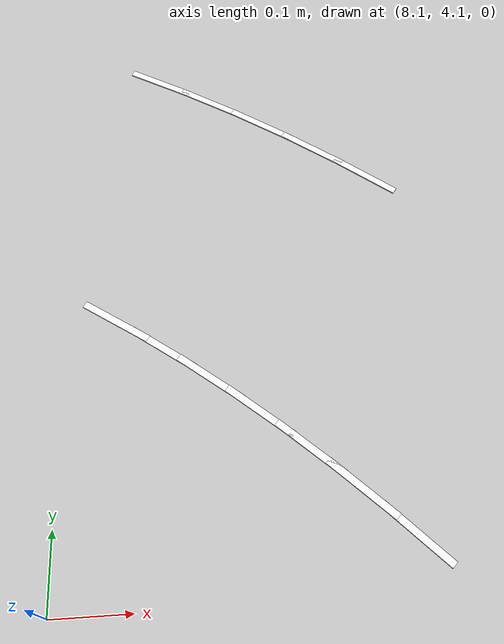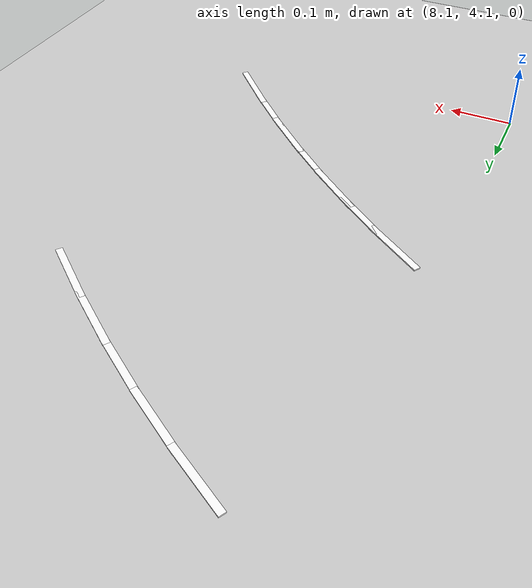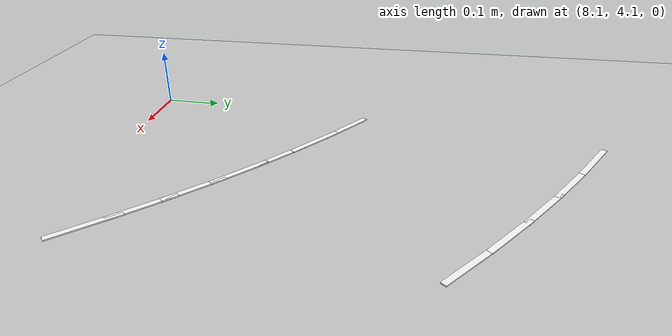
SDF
<sdf version="1.7">
 <world name="default">
  <model name="ground_plane">
   <static>1</static>
   <link name="link">
    <collision name="collision">
     <geometry><plane><normal>0 0 1</normal><size>100 100</size></plane></geometry>
     <surface>
      <contact><collide_bitmask>65535</collide_bitmask></contact>
      <friction><ode><mu>100</mu><mu2>50</mu2></ode></friction>
     </surface>
    </collision>
    <visual name="visual">
     <cast_shadows>0</cast_shadows>
     <geometry><plane><normal>0 0 1</normal><size>100 100</size></plane></geometry>
     <material>
      <script><uri>file://media/materials/scripts/gazebo.material</uri><name>Gazebo/Grey</name></script>
     </material>
    </visual>
   </link>
  </model>
  <model name="lane_line_left_75">
   <static>1</static>
   <link name="link">
    <pose>0 0 -0.004 0 -0 0</pose>
    <visual name="visual">
     <geometry><box><size>0.1038 0.01 0.01</size></box></geometry>
     <material><ambient>1 1 1 1</ambient><diffuse>1 1 1 1</diffuse></material>
    </visual>
    <collision name="collision"><geometry><box><size>0.1038 0.01 0.01</size></box></geometry></collision>
   </link>
   <pose>8.23536 4.9036 0 0 0 -0.509303</pose>
  </model>
  <model name="lane_line_left_76">
   <static>1</static>
   <link name="link">
    <pose>0 0 -0.004 0 -0 0</pose>
    <visual name="visual">
     <geometry><box><size>0.1042 0.01 0.01</size></box></geometry>
     <material><ambient>1 1 1 1</ambient><diffuse>1 1 1 1</diffuse></material>
    </visual>
    <collision name="collision"><geometry><box><size>0.1042 0.01 0.01</size></box></geometry></collision>
   </link>
   <pose>8.31453 4.85736 0 0 0 -0.54778</pose>
  </model>
  <model name="lane_line_left_77">
   <static>1</static>
   <link name="link">
    <pose>0 0 -0.004 0 -0 0</pose>
    <visual name="visual">
     <geometry><box><size>0.1047 0.01 0.01</size></box></geometry>
     <material><ambient>1 1 1 1</ambient><diffuse>1 1 1 1</diffuse></material>
    </visual>
    <collision name="collision"><geometry><box><size>0.1047 0.01 0.01</size></box></geometry></collision>
   </link>
   <pose>8.39214 4.80797 0 0 0 -0.58565</pose>
  </model>
  <model name="lane_line_right_77">
   <static>1</static>
   <link name="link">
    <pose>0 0 -0.004 0 -0 0</pose>
    <visual name="visual">
     <geometry><box><size>0.1047 0.01 0.01</size></box></geometry>
     <material><ambient>1 1 1 1</ambient><diffuse>1 1 1 1</diffuse></material>
    </visual>
    <collision name="collision"><geometry><box><size>0.1047 0.01 0.01</size></box></geometry></collision>
   </link>
   <pose>8.17105 4.47462 0 0 0 -0.58565</pose>
  </model>
  <model name="lane_line_left_78">
   <static>1</static>
   <link name="link">
    <pose>0 0 -0.004 0 -0 0</pose>
    <visual name="visual">
     <geometry><box><size>0.1053 0.01 0.01</size></box></geometry>
     <material><ambient>1 1 1 1</ambient><diffuse>1 1 1 1</diffuse></material>
    </visual>
    <collision name="collision"><geometry><box><size>0.1053 0.01 0.01</size></box></geometry></collision>
   </link>
   <pose>8.46817 4.75547 0 0 0 -0.622829</pose>
  </model>
  <model name="lane_line_right_78">
   <static>1</static>
   <link name="link">
    <pose>0 0 -0.004 0 -0 0</pose>
    <visual name="visual">
     <geometry><box><size>0.1053 0.01 0.01</size></box></geometry>
     <material><ambient>1 1 1 1</ambient><diffuse>1 1 1 1</diffuse></material>
    </visual>
    <collision name="collision"><geometry><box><size>0.1053 0.01 0.01</size></box></geometry></collision>
   </link>
   <pose>8.23484 4.43058 0 0 0 -0.622829</pose>
  </model>
  <model name="lane_line_left_79">
   <static>1</static>
   <link name="link">
    <pose>0 0 -0.004 0 -0 0</pose>
    <visual name="visual">
     <geometry><box><size>0.1059 0.01 0.01</size></box></geometry>
     <material><ambient>1 1 1 1</ambient><diffuse>1 1 1 1</diffuse></material>
    </visual>
    <collision name="collision"><geometry><box><size>0.1059 0.01 0.01</size></box></geometry></collision>
   </link>
   <pose>8.5426 4.69993 0 0 0 -0.659246</pose>
  </model>
  <model name="lane_line_right_79">
   <static>1</static>
   <link name="link">
    <pose>0 0 -0.004 0 -0 0</pose>
    <visual name="visual">
     <geometry><box><size>0.1059 0.01 0.01</size></box></geometry>
     <material><ambient>1 1 1 1</ambient><diffuse>1 1 1 1</diffuse></material>
    </visual>
    <collision name="collision"><geometry><box><size>0.1059 0.01 0.01</size></box></geometry></collision>
   </link>
   <pose>8.29759 4.38375 0 0 0 -0.659246</pose>
  </model>
  <model name="lane_line_right_80">
   <static>1</static>
   <link name="link">
    <pose>0 0 -0.004 0 -0 0</pose>
    <visual name="visual">
     <geometry><box><size>0.1067 0.01 0.01</size></box></geometry>
     <material><ambient>1 1 1 1</ambient><diffuse>1 1 1 1</diffuse></material>
    </visual>
    <collision name="collision"><geometry><box><size>0.1067 0.01 0.01</size></box></geometry></collision>
   </link>
   <pose>8.3593 4.33414 0 0 0 -0.694839</pose>
  </model>
  <model name="lane_line_right_81">
   <static>1</static>
   <link name="link">
    <pose>0 0 -0.004 0 -0 0</pose>
    <visual name="visual">
     <geometry><box><size>0.1075 0.01 0.01</size></box></geometry>
     <material><ambient>1 1 1 1</ambient><diffuse>1 1 1 1</diffuse></material>
    </visual>
    <collision name="collision"><geometry><box><size>0.1075 0.01 0.01</size></box></geometry></collision>
   </link>
   <pose>8.41995 4.28177 0 0 0 -0.729559</pose>
  </model>
  <model name="lane_line_right_82">
   <static>1</static>
   <link name="link">
    <pose>0 0 -0.004 0 -0 0</pose>
    <visual name="visual">
     <geometry><box><size>0.1084 0.01 0.01</size></box></geometry>
     <material><ambient>1 1 1 1</ambient><diffuse>1 1 1 1</diffuse></material>
    </visual>
    <collision name="collision"><geometry><box><size>0.1084 0.01 0.01</size></box></geometry></collision>
   </link>
   <pose>8.47953 4.22664 0 0 0 -0.763369</pose>
  </model>
  <model name="lane_line_right_83">
   <static>1</static>
   <link name="link">
    <pose>0 0 -0.004 0 -0 0</pose>
    <visual name="visual">
     <geometry><box><size>0.1094 0.01 0.01</size></box></geometry>
     <material><ambient>1 1 1 1</ambient><diffuse>1 1 1 1</diffuse></material>
    </visual>
    <collision name="collision"><geometry><box><size>0.1094 0.01 0.01</size></box></geometry></collision>
   </link>
   <pose>8.53805 4.16877 0 0 0 -0.79624</pose>
  </model>
 </world>
</sdf>
